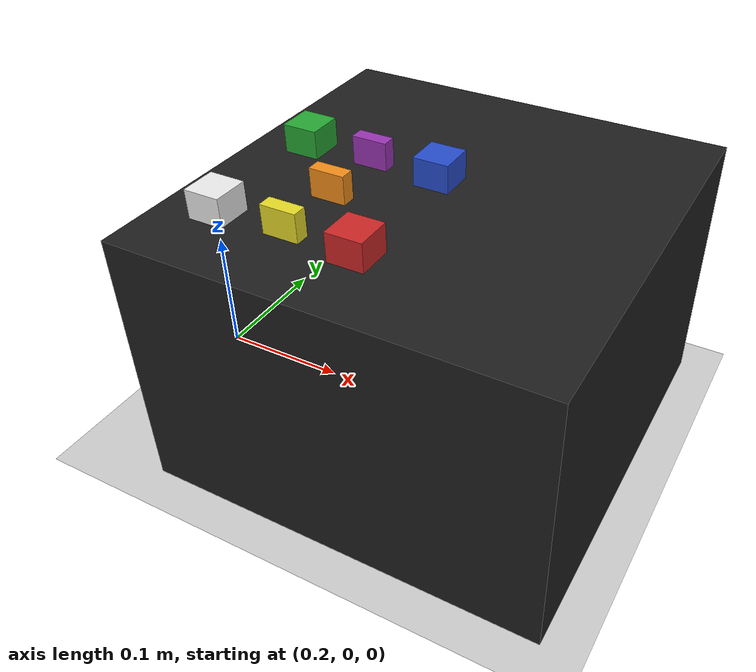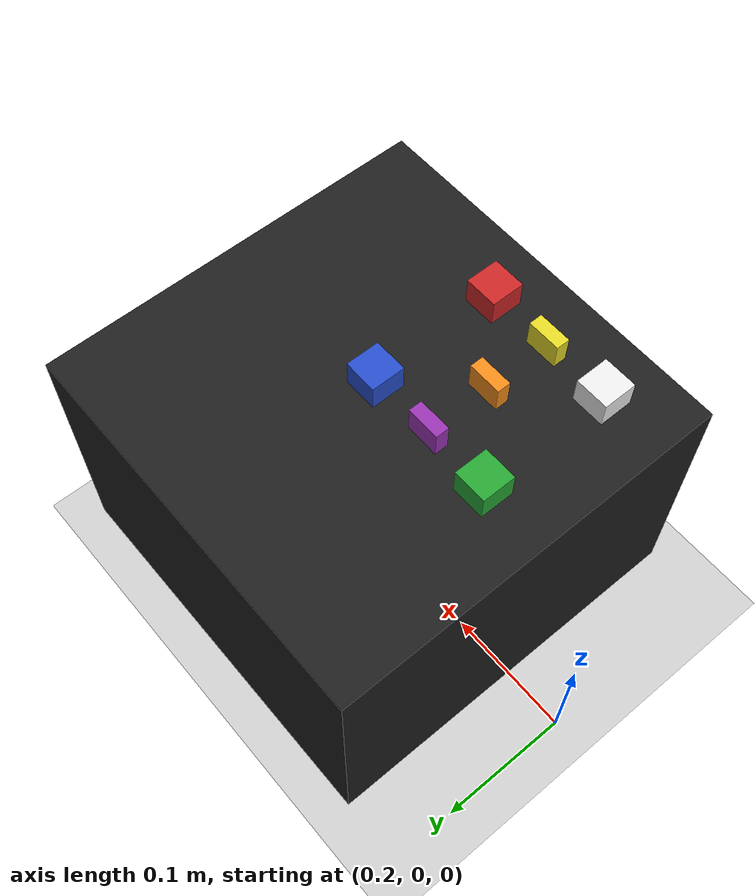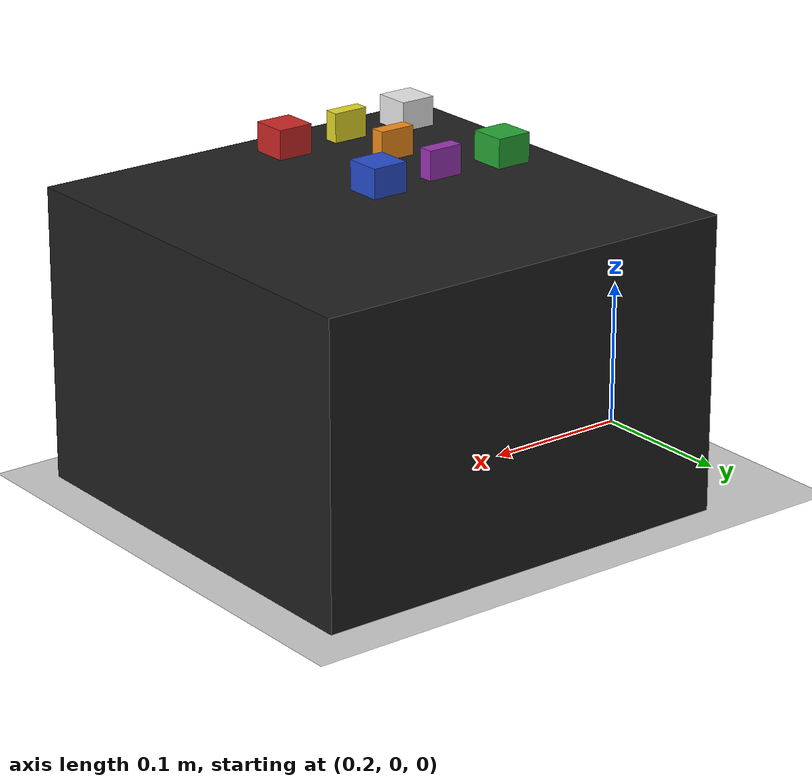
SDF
<?xml version='1.0' ?>
<sdf version='1.4'>
  <world name='empty'>
    <!-- A global light source -->
    <include>
      <uri>model://sun</uri>
    </include>

    <!-- A ground plane -->
    <include>
      <uri>model://ground_plane</uri>
    </include>

    <!-- Physics settings for simulation -->
    <physics type='ode'>
      <max_step_size>0.001</max_step_size>
      <real_time_factor>1</real_time_factor>
      <real_time_update_rate>1000</real_time_update_rate>
      <gravity>0 0 -9.81</gravity>
    </physics>

    <model name='box1_model'>
      <pose frame=''>0.30 0.0 0.2165 0 0 0</pose>
      <link name='box1'>
        <inertial>
          <mass>0.001</mass>
          <inertia>
            <ixx>0.00016</ixx>
            <ixy>0</ixy>
            <ixz>0</ixz>
            <iyy>0.00016</iyy>
            <iyz>0</iyz>
            <izz>0.00006</izz>
          </inertia>
        </inertial>
        <collision name='collision'>
          <geometry>
            <box>
              <size>0.025 0.025 0.02</size>
            </box>
          </geometry>
          <max_contacts>10</max_contacts>
          <surface>
            <friction>
              <ode>
                <mu>100.0</mu>
                <mu2>100.0</mu2>
              </ode>
            </friction>
            <contact>
              <ode>
                <kp>10000000.0</kp>
                <kd>1.0</kd>
                <min_depth>0.001</min_depth>
                <max_vel>0.1</max_vel>
              </ode>
            </contact>
          </surface>
        </collision>
        <visual name='visual'>
            <geometry>
              <box>
                <size>0.025 0.025 0.02</size>
              </box>
            </geometry>
          <material>
            <script>
              <name>Gazebo/Green</name>
              <uri>file://media/materials/scripts/gazebo.material</uri>
            </script>
          </material>
        </visual>
        <self_collide>0</self_collide>
        <kinematic>0</kinematic>
      </link>
    </model>

    <model name='box2_model'>
      <pose frame=''>0.40 0.0 0.2165 0 0 0</pose>
      <link name='box2'>
        <inertial>
          <mass>0.001</mass>
          <inertia>
            <ixx>0.00016</ixx>
            <ixy>0</ixy>
            <ixz>0</ixz>
            <iyy>0.00016</iyy>
            <iyz>0</iyz>
            <izz>0.00006</izz>
          </inertia>
        </inertial>
        <collision name='collision'>
          <geometry>
            <box>
              <size>0.025 0.025 0.02</size>
            </box>
          </geometry>
          <max_contacts>10</max_contacts>
          <surface>
            <friction>
              <ode>
                <mu>100.0</mu>
                <mu2>100.0</mu2>
              </ode>
            </friction>
            <contact>
              <ode>
                <kp>10000000.0</kp>
                <kd>1.0</kd>
                <min_depth>0.001</min_depth>
                <max_vel>0.1</max_vel>
              </ode>
            </contact>
          </surface>
        </collision>
        <visual name='visual'>
            <geometry>
              <box>
                <size>0.025 0.025 0.02</size>
              </box>
            </geometry>
          <material>
            <script>
              <name>Gazebo/Blue</name>
              <uri>file://media/materials/scripts/gazebo.material</uri>
            </script>
          </material>
        </visual>
        <self_collide>0</self_collide>
        <kinematic>0</kinematic>
      </link>
    </model>

    <model name='box3_model'>
      <pose frame=''>0.40 -0.10 0.2165 0 0 0</pose>
      <link name='box3'>
        <inertial>
          <mass>0.001</mass>
          <inertia>
            <ixx>0.00016</ixx>
            <ixy>0</ixy>
            <ixz>0</ixz>
            <iyy>0.00016</iyy>
            <iyz>0</iyz>
            <izz>0.00006</izz>
          </inertia>
        </inertial>
        <collision name='collision'>
          <geometry>
            <box>
              <size>0.025 0.025 0.02</size>
            </box>
          </geometry>
          <max_contacts>10</max_contacts>
          <surface>
            <friction>
              <ode>
                <mu>100.0</mu>
                <mu2>100.0</mu2>
              </ode>
            </friction>
            <contact>
              <ode>
                <kp>10000000.0</kp>
                <kd>1.0</kd>
                <min_depth>0.001</min_depth>
                <max_vel>0.1</max_vel>
              </ode>
            </contact>
          </surface>
        </collision>
        <visual name='visual'>
            <geometry>
              <box>
                <size>0.025 0.025 0.02</size>
              </box>
            </geometry>
          <material>
            <script>
              <name>Gazebo/Red</name>
              <uri>file://media/materials/scripts/gazebo.material</uri>
            </script>
          </material>
        </visual>
        <self_collide>0</self_collide>
        <kinematic>0</kinematic>
      </link>
    </model>

    <model name='box4_model'>
      <pose frame=''>0.30 -0.10 0.2165 0 0 0</pose>
      <link name='box4'>
        <inertial>
          <mass>0.001</mass>
          <inertia>
            <ixx>0.00016</ixx>
            <ixy>0</ixy>
            <ixz>0</ixz>
            <iyy>0.00016</iyy>
            <iyz>0</iyz>
            <izz>0.00006</izz>
          </inertia>
        </inertial>
        <collision name='collision'>
          <geometry>
            <box>
              <size>0.025 0.025 0.02</size>
            </box>
          </geometry>
          <max_contacts>10</max_contacts>
          <surface>
            <friction>
              <ode>
                <mu>100.0</mu>
                <mu2>100.0</mu2>
              </ode>
            </friction>
            <contact>
              <ode>
                <kp>10000000.0</kp>
                <kd>1.0</kd>
                <min_depth>0.001</min_depth>
                <max_vel>0.1</max_vel>
              </ode>
            </contact>
          </surface>
        </collision>
        <visual name='visual'>
            <geometry>
              <box>
                <size>0.025 0.025 0.02</size>
              </box>
            </geometry>
          <material>
            <script>
              <name>Gazebo/White</name>
              <uri>file://media/materials/scripts/gazebo.material</uri>
            </script>
          </material>
        </visual>
        <self_collide>0</self_collide>
        <kinematic>0</kinematic>
      </link>
    </model>

    <model name='box5_model'>
      <pose frame=''>0.35 -0.10 0.2165 0 0 0</pose>
      <link name='box5'>
        <inertial>
          <mass>0.001</mass>
          <inertia>
            <ixx>0.00016</ixx>
            <ixy>0</ixy>
            <ixz>0</ixz>
            <iyy>0.00016</iyy>
            <iyz>0</iyz>
            <izz>0.00006</izz>
          </inertia>
        </inertial>
        <collision name='collision'>
          <geometry>
            <box>
              <size>0.025 0.01 0.02</size>
            </box>
          </geometry>
          <max_contacts>10</max_contacts>
          <surface>
            <friction>
              <ode>
                <mu>100.0</mu>
                <mu2>100.0</mu2>
              </ode>
            </friction>
            <contact>
              <ode>
                <kp>10000000.0</kp>
                <kd>1.0</kd>
                <min_depth>0.001</min_depth>
                <max_vel>0.1</max_vel>
              </ode>
            </contact>
          </surface>
        </collision>
        <visual name='visual'>
            <geometry>
              <box>
                <size>0.025 0.01 0.02</size>
              </box>
            </geometry>
          <material>
            <script>
              <name>Gazebo/Yellow</name>
              <uri>file://media/materials/scripts/gazebo.material</uri>
            </script>
          </material>
        </visual>
        <self_collide>0</self_collide>
        <kinematic>0</kinematic>
      </link>
    </model>

    <model name='box6_model'>
      <pose frame=''>0.35 -0.05 0.2165 0 0 0</pose>
      <link name='box6'>
        <inertial>
          <mass>0.001</mass>
          <inertia>
            <ixx>0.00016</ixx>
            <ixy>0</ixy>
            <ixz>0</ixz>
            <iyy>0.00016</iyy>
            <iyz>0</iyz>
            <izz>0.00006</izz>
          </inertia>
        </inertial>
        <collision name='collision'>
          <geometry>
            <box>
              <size>0.025 0.01 0.02</size>
            </box>
          </geometry>
          <max_contacts>10</max_contacts>
          <surface>
            <friction>
              <ode>
                <mu>100.0</mu>
                <mu2>100.0</mu2>
              </ode>
            </friction>
            <contact>
              <ode>
                <kp>10000000.0</kp>
                <kd>1.0</kd>
                <min_depth>0.001</min_depth>
                <max_vel>0.1</max_vel>
              </ode>
            </contact>
          </surface>
        </collision>
        <visual name='visual'>
            <geometry>
              <box>
                <size>0.025 0.01 0.02</size>
              </box>
            </geometry>
          <material>
            <script>
              <name>Gazebo/Orange</name>
              <uri>file://media/materials/scripts/gazebo.material</uri>
            </script>
          </material>
        </visual>
        <self_collide>0</self_collide>
        <kinematic>0</kinematic>
      </link>
    </model>

    <model name='box7_model'>
      <pose frame=''>0.35 0 0.2165 0 0 0</pose>
      <link name='box7'>
        <inertial>
          <mass>0.001</mass>
          <inertia>
            <ixx>0.00016</ixx>
            <ixy>0</ixy>
            <ixz>0</ixz>
            <iyy>0.00016</iyy>
            <iyz>0</iyz>
            <izz>0.00006</izz>
          </inertia>
        </inertial>
        <collision name='collision'>
          <geometry>
            <box>
              <size>0.025 0.01 0.02</size>
            </box>
          </geometry>
          <max_contacts>10</max_contacts>
          <surface>
            <friction>
              <ode>
                <mu>100.0</mu>
                <mu2>100.0</mu2>
              </ode>
            </friction>
            <contact>
              <ode>
                <kp>10000000.0</kp>
                <kd>1.0</kd>
                <min_depth>0.001</min_depth>
                <max_vel>0.1</max_vel>
              </ode>
            </contact>
          </surface>
        </collision>
        <visual name='visual'>
            <geometry>
              <box>
                <size>0.025 0.01 0.02</size>
              </box>
            </geometry>
          <material>
            <script>
              <name>Gazebo/Purple</name>
              <uri>file://media/materials/scripts/gazebo.material</uri>
            </script>
          </material>
        </visual>
        <self_collide>0</self_collide>
        <kinematic>0</kinematic>
      </link>
    </model>

    <model name='table_box_model'>
      <static>true</static>
      <pose frame=''>0.40 0.0 0.1 0 -0 1.5707963265</pose>
      <link name='table_box_link'>
        <inertial>
          <mass>1</mass>
          <inertia>
            <ixx>0.166667</ixx>
            <ixy>0</ixy>
            <ixz>0</ixz>
            <iyy>0.166667</iyy>
            <iyz>0</iyz>
            <izz>0.166667</izz>
          </inertia>
        </inertial>
        <collision name='collision'>
          <geometry>
            <box>
              <size>0.30 0.30 0.2</size>
            </box>
          </geometry>
          <max_contacts>10</max_contacts>
          <surface>
            <contact>
              <ode/>
            </contact>
            <bounce/>
            <friction>
              <ode>
                <mu>0.6</mu>
                <mu2>0.6</mu2>
              </ode>
              <torsional>
                <ode/>
              </torsional>
            </friction>
          </surface>
        </collision>
        <visual name='visual'>
          <geometry>
            <box>
              <size>0.30 0.30 0.2</size>
            </box>
          </geometry>
          <material>
            <script>
              <name>Gazebo/Black</name>
              <uri>file://media/materials/scripts/gazebo.material</uri>
            </script>
          </material>
        </visual>
        <self_collide>0</self_collide>
        <kinematic>0</kinematic>
      </link>
    </model>
  </world>
</sdf>
